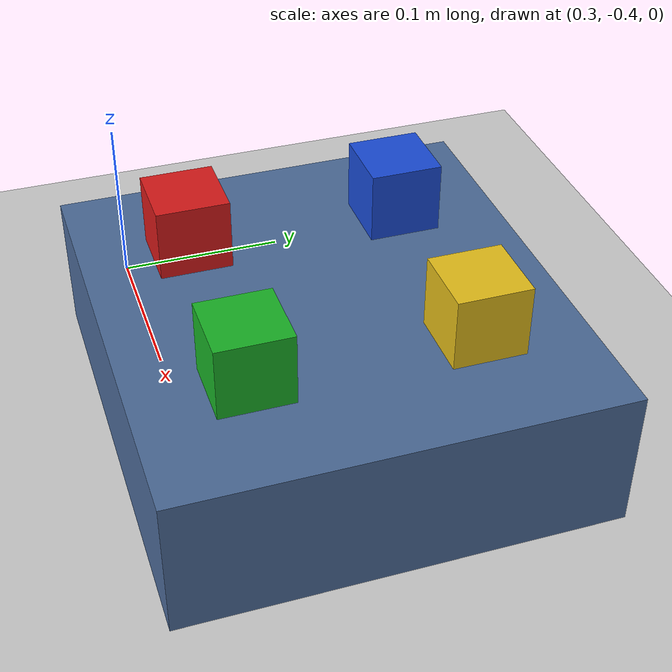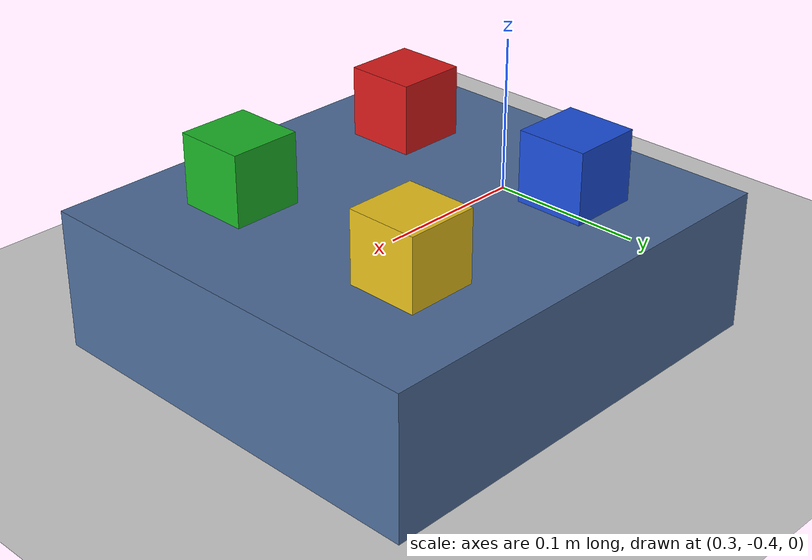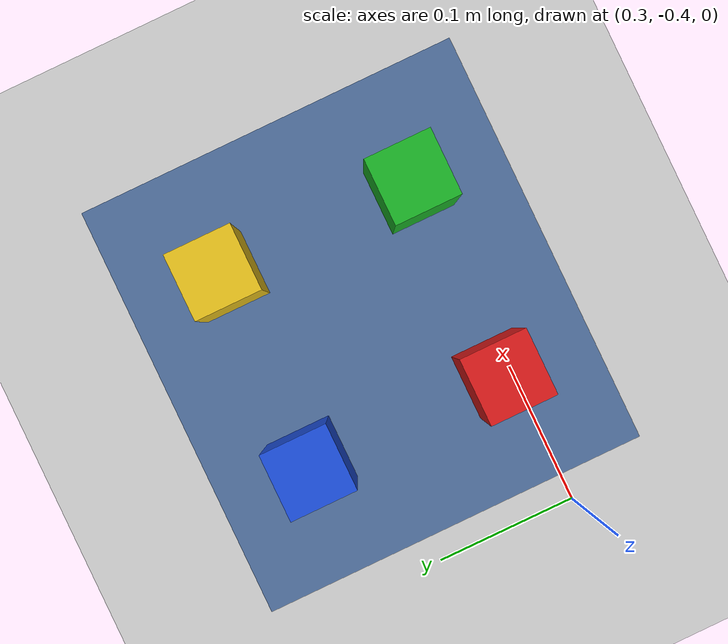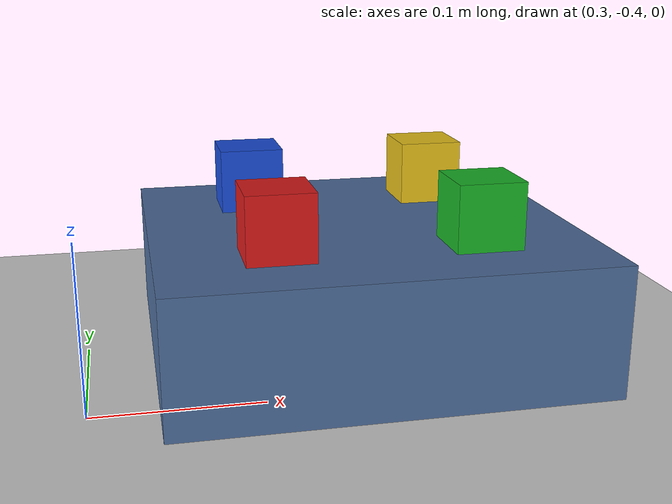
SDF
<?xml version="1.0" ?>
<sdf version="1.10">
  <world name="perception_cell">
    <physics name="1ms" type="ignored">
      <max_step_size>0.001</max_step_size>
      <real_time_factor>1.0</real_time_factor>
    </physics>
    <plugin filename="gz-sim-physics-system" name="gz::sim::systems::Physics"/>
    <plugin filename="gz-sim-user-commands-system" name="gz::sim::systems::UserCommands"/>
    <plugin filename="gz-sim-scene-broadcaster-system" name="gz::sim::systems::SceneBroadcaster"/>
    <plugin filename="gz-sim-sensors-system" name="gz::sim::systems::Sensors">
      <render_engine>ogre2</render_engine>
    </plugin>

    <light type="directional" name="sun">
      <cast_shadows>true</cast_shadows>
      <pose>0 0 10 0 0 0</pose>
      <diffuse>0.95 0.95 0.95 1</diffuse>
      <specular>0.3 0.3 0.3 1</specular>
      <direction>-0.3 0.2 -0.9</direction>
    </light>

    <model name="ground_plane">
      <static>true</static>
      <link name="link">
        <collision name="collision">
          <geometry><plane><normal>0 0 1</normal><size>20 20</size></plane></geometry>
        </collision>
        <visual name="visual">
          <geometry><plane><normal>0 0 1</normal><size>20 20</size></plane></geometry>
          <material><ambient>0.8 0.8 0.8 1</ambient><diffuse>0.8 0.8 0.8 1</diffuse></material>
        </visual>
      </link>
    </model>

    <!-- Supply bin (top at z = 0.08) -->
    <model name="supply_bin">
      <static>true</static>
      <pose>0.47 -0.32 0.04 0 0 0</pose>
      <link name="link">
        <collision name="collision"><geometry><box><size>0.26 0.24 0.08</size></box></geometry></collision>
        <visual name="visual"><geometry><box><size>0.26 0.24 0.08</size></box></geometry>
          <material><ambient>0.30 0.42 0.60 1</ambient><diffuse>0.30 0.42 0.60 1</diffuse></material>
        </visual>
      </link>
    </model>

    <!-- Four coloured parts on the bin (0.04 m cubes, centre z = 0.10) -->
    <model name="part_red">
      <pose>0.41 -0.38 0.10 0 0 0</pose>
      <link name="link">
        <inertial><mass>0.05</mass><inertia><ixx>1.3e-5</ixx><iyy>1.3e-5</iyy><izz>1.3e-5</izz><ixy>0</ixy><ixz>0</ixz><iyz>0</iyz></inertia></inertial>
        <collision name="collision"><geometry><box><size>0.04 0.04 0.04</size></box></geometry></collision>
        <visual name="visual"><geometry><box><size>0.04 0.04 0.04</size></box></geometry>
          <material><ambient>0.85 0.10 0.10 1</ambient><diffuse>0.85 0.10 0.10 1</diffuse></material>
        </visual>
      </link>
    </model>
    <model name="part_green">
      <pose>0.53 -0.38 0.10 0 0 0</pose>
      <link name="link">
        <inertial><mass>0.05</mass><inertia><ixx>1.3e-5</ixx><iyy>1.3e-5</iyy><izz>1.3e-5</izz><ixy>0</ixy><ixz>0</ixz><iyz>0</iyz></inertia></inertial>
        <collision name="collision"><geometry><box><size>0.04 0.04 0.04</size></box></geometry></collision>
        <visual name="visual"><geometry><box><size>0.04 0.04 0.04</size></box></geometry>
          <material><ambient>0.10 0.70 0.15 1</ambient><diffuse>0.10 0.70 0.15 1</diffuse></material>
        </visual>
      </link>
    </model>
    <model name="part_blue">
      <pose>0.41 -0.26 0.10 0 0 0</pose>
      <link name="link">
        <inertial><mass>0.05</mass><inertia><ixx>1.3e-5</ixx><iyy>1.3e-5</iyy><izz>1.3e-5</izz><ixy>0</ixy><ixz>0</ixz><iyz>0</iyz></inertia></inertial>
        <collision name="collision"><geometry><box><size>0.04 0.04 0.04</size></box></geometry></collision>
        <visual name="visual"><geometry><box><size>0.04 0.04 0.04</size></box></geometry>
          <material><ambient>0.10 0.30 0.85 1</ambient><diffuse>0.10 0.30 0.85 1</diffuse></material>
        </visual>
      </link>
    </model>
    <model name="part_yellow">
      <pose>0.53 -0.26 0.10 0 0 0</pose>
      <link name="link">
        <inertial><mass>0.05</mass><inertia><ixx>1.3e-5</ixx><iyy>1.3e-5</iyy><izz>1.3e-5</izz><ixy>0</ixy><ixz>0</ixz><iyz>0</iyz></inertia></inertial>
        <collision name="collision"><geometry><box><size>0.04 0.04 0.04</size></box></geometry></collision>
        <visual name="visual"><geometry><box><size>0.04 0.04 0.04</size></box></geometry>
          <material><ambient>0.90 0.75 0.10 1</ambient><diffuse>0.90 0.75 0.10 1</diffuse></material>
        </visual>
      </link>
    </model>

    <!-- Downward RGB-D camera over the bin. Raised and widened so the whole
         bin footprint stays in view even when parts are scattered to the edges. -->
    <model name="rgbd_camera">
      <static>true</static>
      <pose>0.47 -0.32 1.00 0 1.5707963 0</pose>
      <link name="link">
        <sensor name="rgbd" type="rgbd_camera">
          <update_rate>10</update_rate>
          <always_on>true</always_on>
          <topic>rgbd_camera</topic>
          <camera>
            <horizontal_fov>1.2217</horizontal_fov>
            <image><width>640</width><height>480</height><format>R8G8B8</format></image>
            <clip><near>0.05</near><far>3.0</far></clip>
          </camera>
        </sensor>
      </link>
    </model>
  </world>
</sdf>
